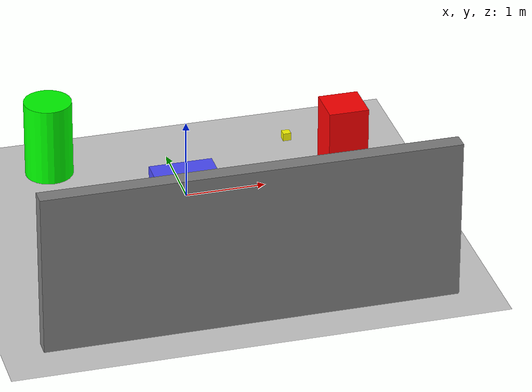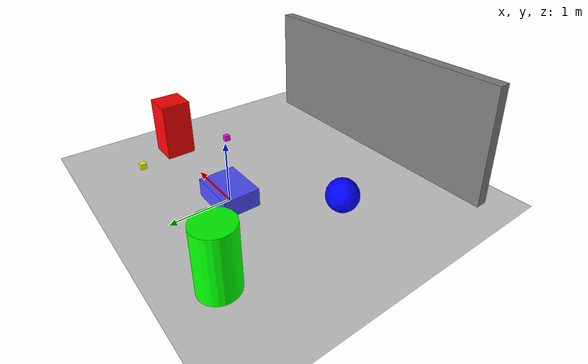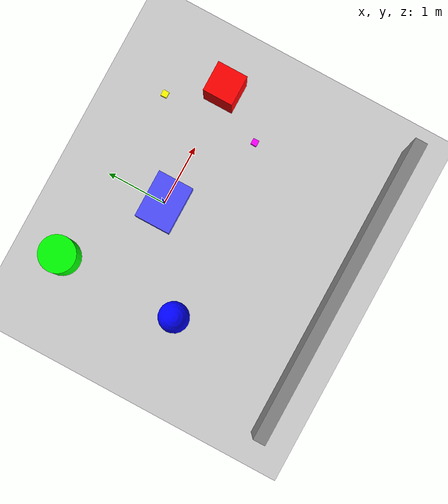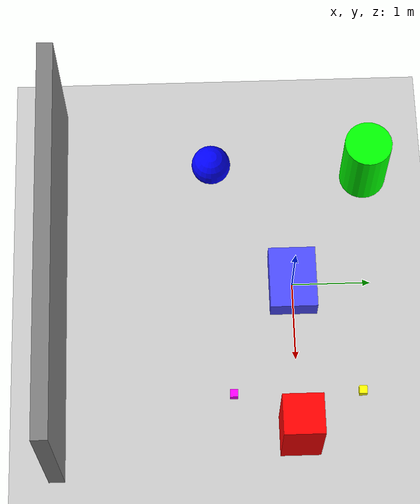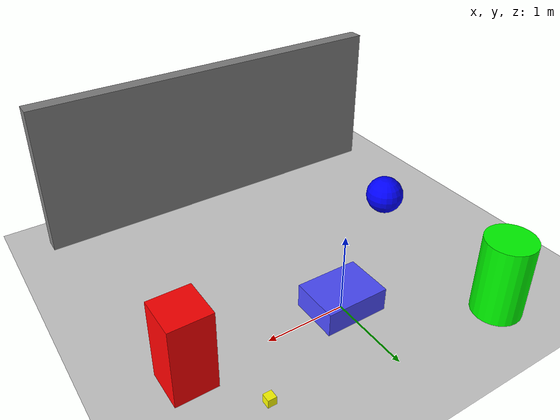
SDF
<?xml version="1.0" ?>
<sdf version="1.6">
  <world name="sensor_test_world">
    <!-- Physics engine configuration -->
    <physics type="ode">
      <max_step_size>0.001</max_step_size>
      <real_time_factor>1.0</real_time_factor>
      <gravity>0 0 -9.8</gravity>
    </physics>

    <!-- Lighting -->
    <light name="sun" type="directional">
      <cast_shadows>true</cast_shadows>
      <pose>0 0 10 0 0 0</pose>
      <diffuse>0.8 0.8 0.8 1</diffuse>
      <specular>0.2 0.2 0.2 1</specular>
      <attenuation>
        <range>1000</range>
        <constant>0.9</constant>
        <linear>0.01</linear>
        <quadratic>0.001</quadratic>
      </attenuation>
      <direction>-0.5 0.1 -0.9</direction>
    </light>

    <!-- Ground plane -->
    <include>
      <uri>model://ground_plane</uri>
    </include>

    <!-- Sky -->
    <scene>
      <ambient>0.4 0.4 0.4 1</ambient>
      <background>0.7 0.7 0.7 1</background>
      <shadows>true</shadows>
    </scene>

    <!-- Include our sensor robot -->
    <include>
      <uri>model://sensor_simulation/sensor_robot.sdf</uri>
      <pose>0 0 0.15 0 0 0</pose>
    </include>

    <!-- Objects for the robot to sense -->

    <!-- Box obstacle -->
    <model name="box_obstacle">
      <pose>2 0 0.5 0 0 0</pose>
      <link name="link">
        <inertial>
          <mass>1.0</mass>
          <inertia><ixx>0.083</ixx><iyy>0.083</iyy><izz>0.083</izz></inertia>
        </inertial>
        <visual name="visual">
          <geometry><box><size>0.5 0.5 1.0</size></box></geometry>
          <material><diffuse>1 0 0 1</diffuse></material>
        </visual>
        <collision name="collision"><geometry><box><size>0.5 0.5 1.0</size></box></geometry></collision>
      </link>
    </model>

    <!-- Cylinder obstacle -->
    <model name="cylinder_obstacle">
      <pose>-1.5 1 0.5 0 0 0</pose>
      <link name="link">
        <inertial>
          <mass>0.8</mass>
          <inertia><ixx>0.05</ixx><iyy>0.05</iyy><izz>0.1</izz></inertia>
        </inertial>
        <visual name="visual">
          <geometry><cylinder><radius>0.3</radius><length>1.0</length></cylinder></geometry>
          <material><diffuse>0 1 0 1</diffuse></material>
        </visual>
        <collision name="collision"><geometry><cylinder><radius>0.3</radius><length>1.0</length></cylinder></geometry></collision>
      </link>
    </model>

    <!-- Sphere obstacle -->
    <model name="sphere_obstacle">
      <pose>-1.5 -1 0.5 0 0 0</pose>
      <link name="link">
        <inertial>
          <mass>0.5</mass>
          <inertia><ixx>0.025</ixx><iyy>0.025</iyy><izz>0.025</izz></inertia>
        </inertial>
        <visual name="visual">
          <geometry><sphere><radius>0.25</radius></sphere></geometry>
          <material><diffuse>0 0 1 1</diffuse></material>
        </visual>
        <collision name="collision"><geometry><sphere><radius>0.25</radius></sphere></geometry></collision>
      </link>
    </model>

    <!-- Wall for LiDAR testing -->
    <model name="wall">
      <pose>0 -3 1 0 0 0</pose>
      <link name="link">
        <inertial>
          <mass>10.0</mass>
          <inertia><ixx>1.0</ixx><iyy>1.0</iyy><izz>1.0</izz></inertia>
        </inertial>
        <visual name="visual">
          <geometry><box><size>5 0.2 2</size></box></geometry>
          <material><diffuse>0.5 0.5 0.5 1</diffuse></material>
        </visual>
        <collision name="collision"><geometry><box><size>5 0.2 2</size></box></geometry></collision>
      </link>
    </model>

    <!-- Small objects for detailed sensing -->
    <model name="small_box_1">
      <pose>1.5 0.8 0.2 0 0 0</pose>
      <link name="link">
        <inertial>
          <mass>0.1</mass>
          <inertia><ixx>0.0008</ixx><iyy>0.0008</iyy><izz>0.0008</izz></inertia>
        </inertial>
        <visual name="visual">
          <geometry><box><size>0.1 0.1 0.1</size></box></geometry>
          <material><diffuse>1 1 0 1</diffuse></material>
        </visual>
        <collision name="collision"><geometry><box><size>0.1 0.1 0.1</size></box></geometry></collision>
      </link>
    </model>

    <model name="small_box_2">
      <pose>1.5 -0.8 0.2 0 0 0</pose>
      <link name="link">
        <inertial>
          <mass>0.1</mass>
          <inertia><ixx>0.0008</ixx><iyy>0.0008</iyy><izz>0.0008</izz></inertia>
        </inertial>
        <visual name="visual">
          <geometry><box><size>0.1 0.1 0.1</size></box></geometry>
          <material><diffuse>1 0 1 1</diffuse></material>
        </visual>
        <collision name="collision"><geometry><box><size>0.1 0.1 0.1</size></box></geometry></collision>
      </link>
    </model>

  </world>
</sdf>

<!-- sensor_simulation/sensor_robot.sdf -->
<sdf version="1.6">
  <model name="sensor_robot">
    <pose>0 0 0.5 0 0 0</pose>

    <!-- Robot base -->
    <link name="chassis">
      <inertial>
        <mass>5.0</mass>
        <inertia>
          <ixx>0.4167</ixx>
          <ixy>0</ixy>
          <ixz>0</ixz>
          <iyy>0.4167</iyy>
          <iyz>0</iyz>
          <izz>0.8333</izz>
        </inertia>
      </inertial>

      <visual name="chassis_visual">
        <geometry>
          <box><size>0.8 0.6 0.3</size></box>
        </geometry>
        <material>
          <ambient>0.2 0.2 0.8 1</ambient>
          <diffuse>0.3 0.3 1 1</diffuse>
          <specular>0.5 0.5 0.5 1</specular>
        </material>
      </visual>

      <collision name="chassis_collision">
        <geometry>
          <box><size>0.8 0.6 0.3</size></box>
        </geometry>
      </collision>
    </link>

    <!-- Camera sensor -->
    <sensor name="camera" type="camera">
      <pose>0.3 0 0.1 0 0 0</pose>
      <camera name="front_camera">
        <horizontal_fov>1.047</horizontal_fov> <!-- 60 degrees -->
        <image>
          <width>640</width>
          <height>480</height>
          <format>R8G8B8</format>
        </image>
        <clip>
          <near>0.1</near>
          <far>10.0</far>
        </clip>
        <noise>
          <type>gaussian</type>
          <mean>0.0</mean>
          <stddev>0.007</stddev>
        </noise>
      </camera>
      <plugin name="camera_controller" filename="libgazebo_ros_camera.so">
        <frame_name>camera_frame</frame_name>
        <topic_name>camera/image_raw</topic_name>
        <camera_info_topic_name>camera/camera_info</camera_info_topic_name>
      </plugin>
    </sensor>

    <!-- LiDAR sensor -->
    <sensor name="laser" type="ray">
      <pose>0.3 0 0.2 0 0 0</pose>
      <ray>
        <scan>
          <horizontal>
            <samples>360</samples>
            <resolution>1</resolution>
            <min_angle>-3.14159</min_angle>
            <max_angle>3.14159</max_angle>
          </horizontal>
        </scan>
        <range>
          <min>0.1</min>
          <max>10.0</max>
          <resolution>0.01</resolution>
        </range>
      </ray>
      <plugin name="laser_controller" filename="libgazebo_ros_laser.so">
        <frame_name>laser_frame</frame_name>
        <topic_name>scan</topic_name>
      </plugin>
    </sensor>

    <!-- IMU sensor -->
    <sensor name="imu_sensor" type="imu">
      <pose>0 0 0 0 0 0</pose>
      <imu>
        <angular_velocity>
          <x>
            <noise type="gaussian">
              <mean>0.0</mean>
              <stddev>0.0017</stddev> <!-- ~0.1 deg/s -->
            </noise>
          </x>
          <y>
            <noise type="gaussian">
              <mean>0.0</mean>
              <stddev>0.0017</stddev>
            </noise>
          </y>
          <z>
            <noise type="gaussian">
              <mean>0.0</mean>
              <stddev>0.0017</stddev>
            </noise>
          </z>
        </angular_velocity>
        <linear_acceleration>
          <x>
            <noise type="gaussian">
              <mean>0.0</mean>
              <stddev>1.7e-2</stddev> <!-- 17 mg -->
            </noise>
          </x>
          <y>
            <noise type="gaussian">
              <mean>0.0</mean>
              <stddev>1.7e-2</stddev>
            </noise>
          </y>
          <z>
            <noise type="gaussian">
              <mean>0.0</mean>
              <stddev>1.7e-2</stddev>
            </noise>
          </z>
        </linear_acceleration>
      </imu>
      <plugin name="imu_controller" filename="libgazebo_ros_imu.so">
        <frame_name>imu_frame</frame_name>
        <topic_name>imu</topic_name>
      </plugin>
    </sensor>

    <!-- Differential drive plugin for movement -->
    <plugin name="diff_drive" filename="libgazebo_ros_diff_drive.so">
      <command_topic>cmd_vel</command_topic>
      <odometry_topic>odom</odometry_topic>
      <odometry_frame>odom</odometry_frame>
      <robot_base_frame>chassis</robot_base_frame>
      <publish_odom>true</publish_odom>
      <publish_odom_tf>true</publish_odom_tf>
      <publish_wheel_tf>false</publish_wheel_tf>
      <wheel_separation>0.4</wheel_separation>
      <wheel_diameter>0.15</wheel_diameter>
      <max_wheel_torque>20.0</max_wheel_torque>
      <max_wheel_acceleration>1.0</max_wheel_acceleration>
    </plugin>

  </model>
</sdf>
